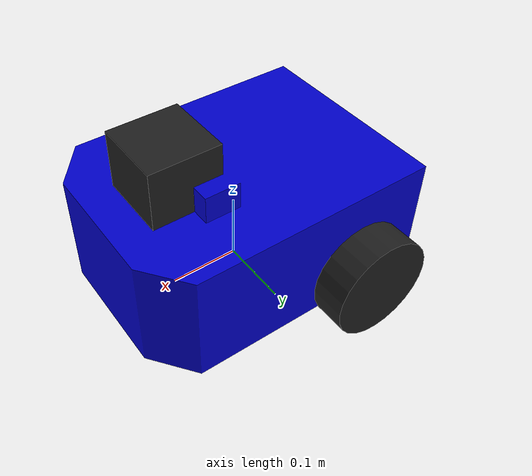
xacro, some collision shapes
<?xml version='1.0'?>
<robot name="car" xmlns:xacro="http://www.ros.org/wiki/xacro">

<!--Chassis/-->

 <link name='chassis'>

   <visual name='chassis_visual'>

      <origin xyz="0 0 0" rpy=" 0 0 -1.5707"/>

      <geometry>
        <mesh filename="package://slam/meshes/base_link.stl" scale="0.001 0.001 0.001"/>
      </geometry>
 <material name="blue">
     	<color rgba="0 0 0.8 1"/>
    </material>
<material name="blue"/>
    </visual>

  <inertial>
    <origin xyz="0 0 0" rpy="0 0 0"/>
    <mass value="10.2233817613991"/>
    <inertia ixx="2.348276" iyy="1.492584" izz="3.087891" ixy="-0.0" iyz="-0.015185" ixz="0.0"/>
  </inertial>

   <collision name='collision'>
      <origin xyz="0 0 0" rpy=" 0 0 -1.5707"/>
      <geometry>
       <mesh filename="package://slam/meshes/base_link.stl" scale="0.001 0.001 0.001"/>
      </geometry>
   </collision>

</link>

<!-- ++++++++++++++++Left wheel+++++++++++++++++++++++++++++++ /-->

<!--left wheel Joint /-->

  <joint type="continuous" name="joint_left_wheel_chassis">
    <origin xyz="-0.1 0.175 .037" rpy="0 0 0"/>
    <child link="left_wheel"/>
    <parent link="chassis"/>
    <axis xyz="0 1 0" rpy="0 0 0"/>
    <limit effort="100" velocity="100"/>
    <joint_properties damping="0.0" friction="0.0"/>
  </joint>

<!--left wheel Link /-->

 <link name="left_wheel">

    <visual name="left_wheel_visual">
      <origin xyz="0 0 0" rpy="0 1.5707 1.5707"/>
      <geometry>
        <cylinder radius="0.075" length="0.05"/>
      </geometry>
      <material name="Black"/>
    </visual>

    <collision name="collision">
      <origin xyz="0 0 0" rpy="0 1.5707 1.5707"/>
      <geometry>
        <cylinder radius="0.075" length="0.05"/>
      </geometry>
    </collision>

   <inertial>
    <origin xyz="0 0 0" rpy="0 0 0"/>
    <mass value="4.953262743117052"/>
    <inertia ixx="0.008949" iyy="0.005769" izz="0.005769" ixy="0.0" iyz="-0.0" ixz="-0.0"/>
  </inertial>

 </link>

<!-- +++++++++++++++++++ Right Wheel +++++++++++++++++++++++++++++++++ /-->

<!--Right wheel joint/-->
  <joint type="continuous" name="joint_right_wheel_chassis">

    <origin xyz="-.1 -0.175 0.037" rpy="0 0 0"/>

    <child link="right_wheel"/>
    <parent link="chassis"/>

    <axis xyz="0 1 0" rpy="0 0 0"/>

    <limit effort="100" velocity="100"/>

    <joint_properties damping="0.0" friction="0.0"/>

  </joint>

<!--Right Wheel link /-->

  <link name="right_wheel">

    <visual name="right_wheel_visual">
      <origin xyz="0 0 0" rpy="0 1.5707 1.5707"/>
      <geometry>
        <cylinder radius="0.075" length="0.05"/>
      </geometry>
       <material name="Black"/>
    </visual>

    <collision name="collision">
      <origin xyz="0 0 0" rpy="0 1.5707 1.5707"/>
      <geometry>
        <cylinder radius="0.075" length="0.05"/>
      </geometry>
    </collision>

  <inertial>
    <origin xyz="0 0 0" rpy="0 0 0"/>
    <mass value="4.953262743117053"/>
    <inertia ixx="0.008949" iyy="0.005769" izz="0.005769" ixy="0.0" iyz="0.0" ixz="0.0"/>
  </inertial>

  </link>

<!-- ++++++++++++++++++  Kinect  +++++++++++++++++++++++++++++ /-->
<!--kinect joint /-->

<joint name="joint_kinect_chassis" type="fixed">
    <origin xyz=".1 0 .2" rpy="0 0 0"/>
    <parent link="chassis"/>
    <child link="kinect"/>
</joint>

<!--Kinect  Link /-->

<link name="kinect">
 <visual>
      <origin xyz="0 0 0.05" rpy="0 0 0"/>
      <geometry>
      <mesh filename="package://mybot_description/meshes/kinect.dae"/>
      </geometry>

 </visual>

 <collision>
    <origin xyz="0 0 0" rpy="0 0 0"/>
    <geometry>
    <box size="0.1 0.1 0.1"/>
    </geometry>
 </collision>

 <inertial>
     <mass value="1e-5" />
     <origin xyz="0 0 0" rpy="0 0 0"/>
     <inertia ixx="1e-6" ixy="0" ixz="0" iyy="1e-6" iyz="0" izz="1e-6" />
 </inertial>
</link>

<!--  Kinect Optical Link and joints   /-->

<joint name="joint_kinect_link" type="fixed">
<origin xyz="0 0 0" rpy="-1.5707 0 -1.5707"/> <!-- To invert the coordinates from image convention (Z is forward) to normal xyz /-->
<parent link="kinect"/>
<child link="kinect_link"/>
</joint>

<!--Virtual link to project the images to, and then flip it to us as its joint is flipped  /-->
<link name="kinect_link">
</link>

<xacro:include filename="$(find slam)/urdf/gazebo_plugins.urdf.xacro" />

</robot>
